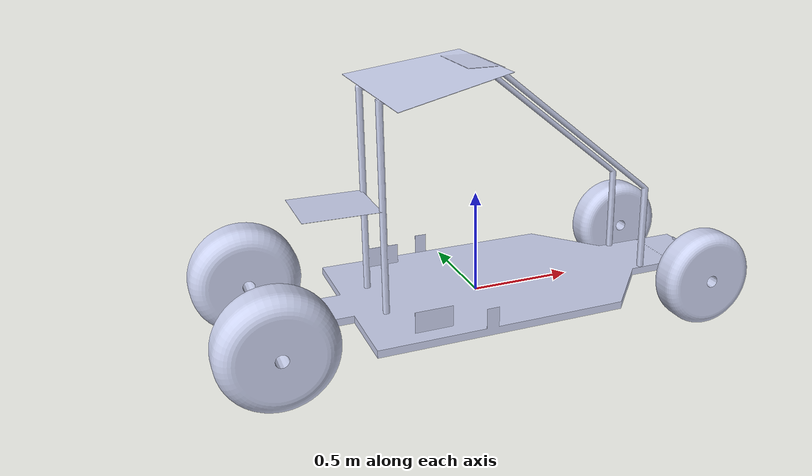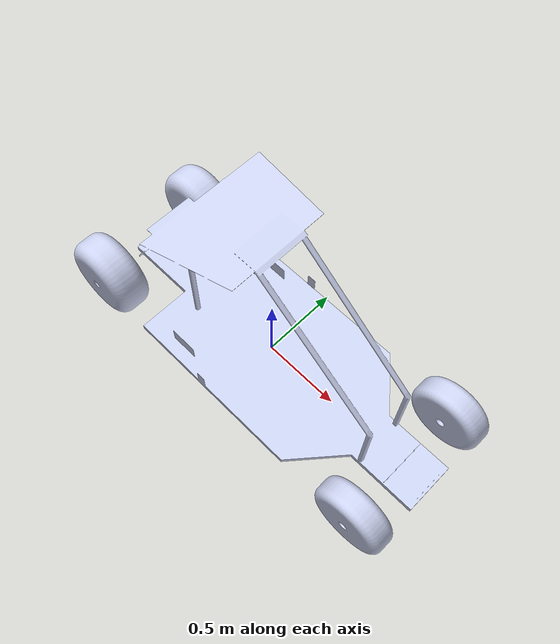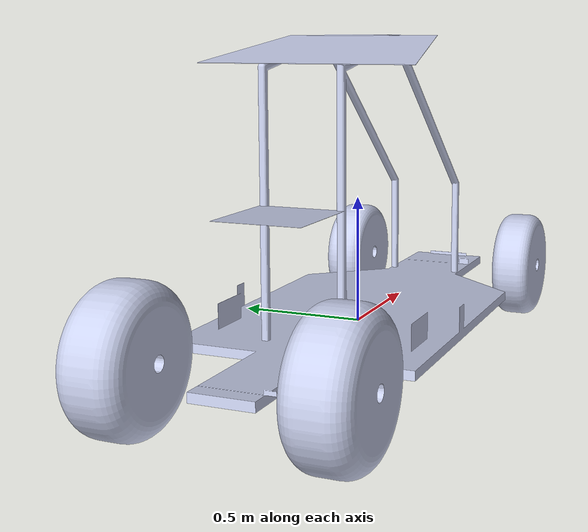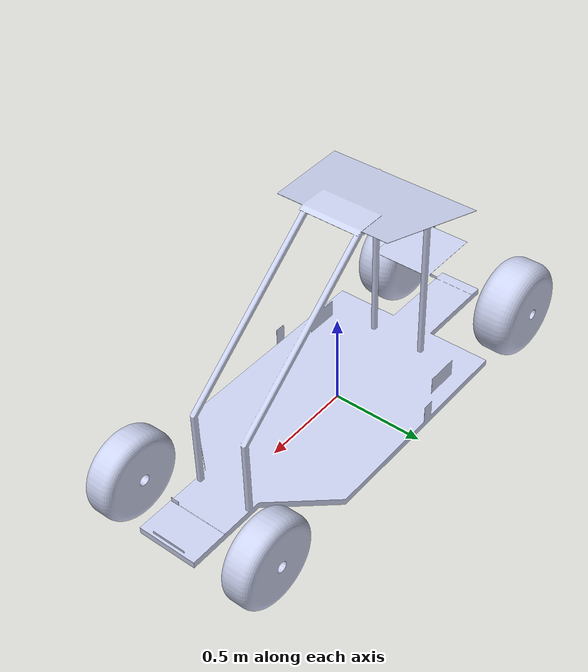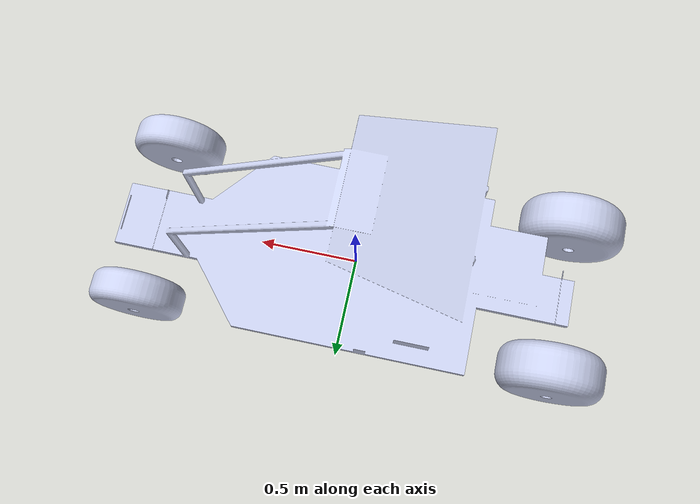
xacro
<?xml version="1.0" encoding="utf-8"?>
<robot
  xmlns:xacro="http://www.ros.org/wiki/xacro" name="historia2">

  <link
    name="base_link">
    <inertial>
      <origin
        xyz="0.0551500950716461 0.000382701697254628 0.0831948322975438"
        rpy="0 0 0" />
      <mass
        value="61.4377623129161" />
      <inertia
        ixx="6.71962689194729"
        ixy="0.000124037120014998"
        ixz="0.565316875594413"
        iyy="21.0066300839919"
        iyz="-0.0142889305150954"
        izz="21.1870326919062" />
    </inertial>
    <visual>
      <origin
        xyz="0 0 0"
        rpy="0 0 0" />
      <geometry>
        <mesh
          filename="package://historia/meshes/base_link.STL" />
      </geometry>
      <material
        name="">
        <color
          rgba="0.792156862745098 0.819607843137255 0.933333333333333 1" />
      </material>
    </visual>
    <collision>
      <origin
        xyz="0 0 0"
        rpy="0 0 0" />
      <geometry>
        <mesh
          filename="package://historia/meshes/base_link.STL" />
      </geometry>
    </collision>
  </link>
  <link
    name="front_right_wheel_link">
    <inertial>
      <origin
        xyz="-1.55431223447522E-15 0.0850000000000004 2.44249065417534E-15"
        rpy="0 0 0" />
      <mass
        value="27.5043397926287" />
      <inertia
        ixx="0.430660554325853"
        ixy="3.24890777589256E-18"
        ixz="-7.23882738820399E-18"
        iyy="0.738191606146009"
        iyz="-7.12844232875935E-20"
        izz="0.430660554325854" />
    </inertial>
    <visual>
      <origin
        xyz="0 0 0"
        rpy="0 0 0" />
      <geometry>
        <mesh
          filename="package://historia/meshes/front_right_wheel_link.STL" />
      </geometry>
      <material
        name="">
        <color
          rgba="0.792156862745098 0.819607843137255 0.933333333333333 1" />
      </material>
    </visual>
    <collision>
      <origin
        xyz="0 0 0"
        rpy="0 0 0" />
      <geometry>
        <mesh
          filename="package://historia/meshes/front_right_wheel_link.STL" />
      </geometry>
    </collision>
  </link>
  <joint
    name="front_right_wheel_joint"
    type="continuous">
    <origin
      xyz="1.0431 -0.50032 0.061"
      rpy="0 0 0" />
    <parent
      link="base_link" />
    <child
      link="front_right_wheel_link" />
    <axis
      xyz="0 1 0" />
    <limit
      effort="1000"
      velocity="1000" />
  </joint>
  <link
    name="front_left_wheel_link">
    <inertial>
      <origin
        xyz="0 -0.085 -2.22044604925031E-16"
        rpy="0 0 0" />
      <mass
        value="27.5043397926287" />
      <inertia
        ixx="0.430660554325854"
        ixy="-4.4685491471646E-18"
        ixz="-1.44592935726242E-18"
        iyy="0.738191606146009"
        iyz="-2.07712992781933E-19"
        izz="0.430660554325854" />
    </inertial>
    <visual>
      <origin
        xyz="0 0 0"
        rpy="0 0 0" />
      <geometry>
        <mesh
          filename="package://historia/meshes/front_left_wheel_link.STL" />
      </geometry>
      <material
        name="">
        <color
          rgba="0.792156862745098 0.819607843137255 0.933333333333333 1" />
      </material>
    </visual>
    <collision>
      <origin
        xyz="0 0 0"
        rpy="0 0 0" />
      <geometry>
        <mesh
          filename="package://historia/meshes/front_left_wheel_link.STL" />
      </geometry>
    </collision>
  </link>
  <joint
    name="front_left_wheel_joint"
    type="continuous">
    <origin
      xyz="1.0431 0.49993 0.061"
      rpy="0 0 0" />
    <parent
      link="base_link" />
    <child
      link="front_left_wheel_link" />
    <axis
      xyz="0 1 0" />
    <limit
      effort="1000"
      velocity="1000" />
  </joint>
  <link
    name="rear_left_wheel_link">
    <inertial>
      <origin
        xyz="0 -0.12 0"
        rpy="0 0 0" />
      <mass
        value="48.0045170814902" />
      <inertia
        ixx="1.00365544511807"
        ixy="1.23599047663348E-17"
        ixz="-1.73549109958526E-18"
        iyy="1.59552843699028"
        iyz="-1.96511643762987E-19"
        izz="1.00365544511807" />
    </inertial>
    <visual>
      <origin
        xyz="0 0 0"
        rpy="0 0 0" />
      <geometry>
        <mesh
          filename="package://historia/meshes/rear_left_wheel_link.STL" />
      </geometry>
      <material
        name="">
        <color
          rgba="0.792156862745098 0.819607843137255 0.933333333333333 1" />
      </material>
    </visual>
    <collision>
      <origin
        xyz="0 0 0"
        rpy="0 0 0" />
      <geometry>
        <mesh
          filename="package://historia/meshes/rear_left_wheel_link.STL" />
      </geometry>
    </collision>
  </link>
  <joint
    name="rear_left_wheel_joint"
    type="continuous">
    <origin
      xyz="-1.0569 0.5001 0.091"
      rpy="0 0 0" />
    <parent
      link="base_link" />
    <child
      link="rear_left_wheel_link" />
    <axis
      xyz="0 1 0" />
    <limit
      effort="1000"
      velocity="1000" />
  </joint>
  <link
    name="rear_right_wheel_link">
    <inertial>
      <origin
        xyz="0 0.12 0"
        rpy="0 0 0" />
      <mass
        value="48.0045170814902" />
      <inertia
        ixx="1.00365544511807"
        ixy="-7.15573433840433E-18"
        ixz="8.89702231972231E-19"
        iyy="1.59552843699028"
        iyz="1.78893358460108E-18"
        izz="1.00365544511807" />
    </inertial>
    <visual>
      <origin
        xyz="0 0 0"
        rpy="0 0 0" />
      <geometry>
        <mesh
          filename="package://historia/meshes/rear_right_wheel_link.STL" />
      </geometry>
      <material
        name="">
        <color
          rgba="0.792156862745098 0.819607843137255 0.933333333333333 1" />
      </material>
    </visual>
    <collision>
      <origin
        xyz="0 0 0"
        rpy="0 0 0" />
      <geometry>
        <mesh
          filename="package://historia/meshes/rear_right_wheel_link.STL" />
      </geometry>
    </collision>
  </link>
  <joint
    name="rear_right_wheel_joint"
    type="continuous">
    <origin
      xyz="-1.0569 -0.50021 0.091"
      rpy="0 0 0" />
    <parent
      link="base_link" />
    <child
      link="rear_right_wheel_link" />
    <axis
      xyz="0 1 0" />
    <limit
      effort="1000"
      velocity="1000" />
  </joint>
</robot>
